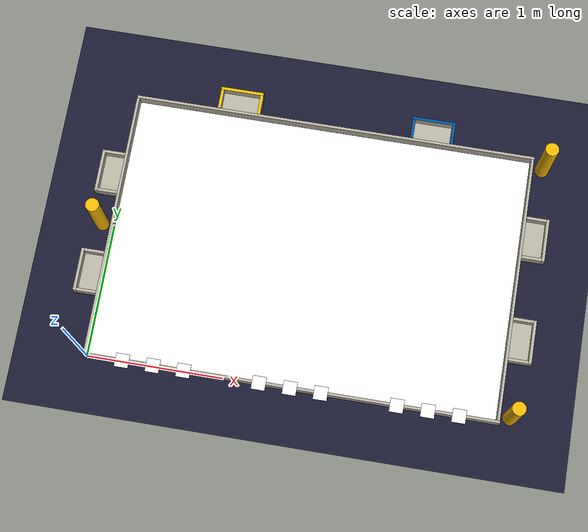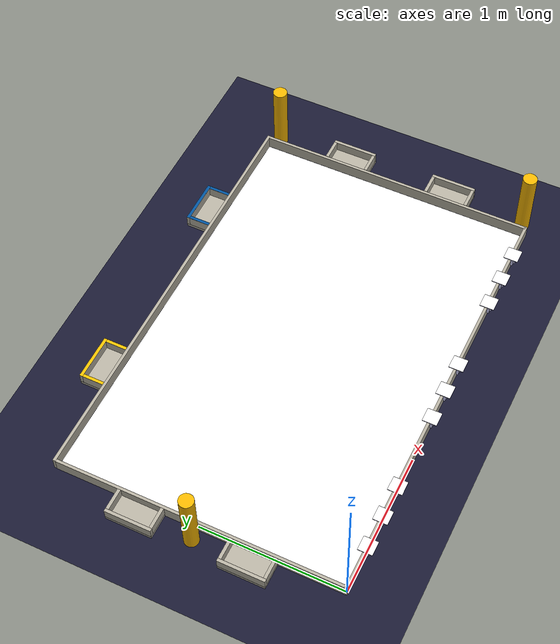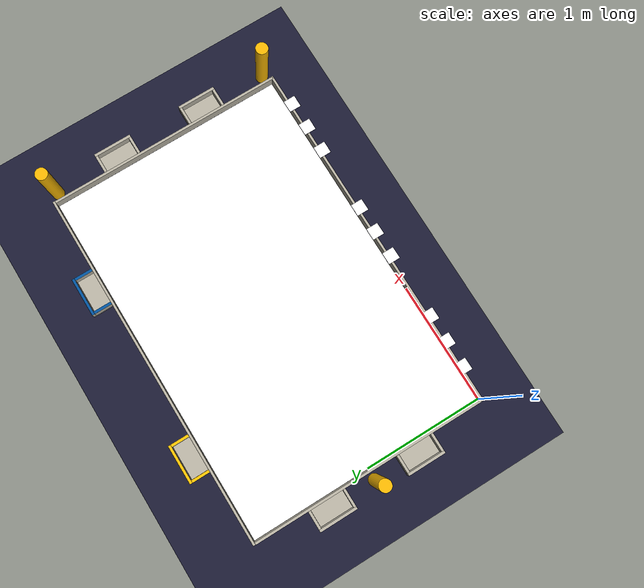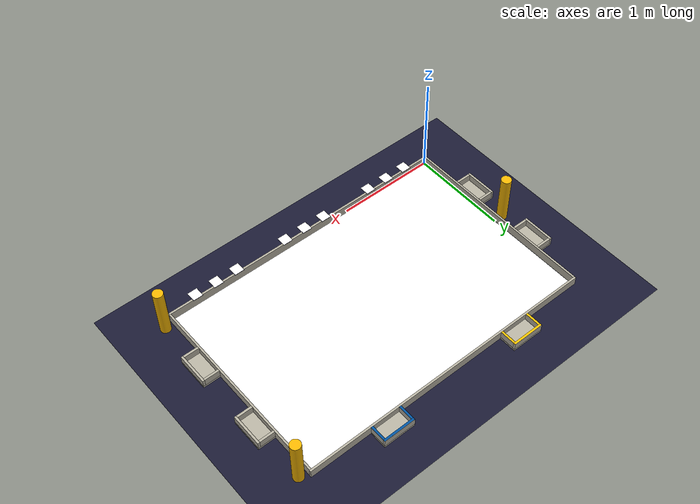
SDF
<sdf version="1.4">
 <world name="eurobot_2024">
  <plugin filename="gz-sim-physics-system" name="gz::sim::systems::Physics"/>
  <plugin filename="gz-sim-user-commands-system" name="gz::sim::systems::UserCommands"/>
  <plugin filename="gz-sim-scene-broadcaster-system" name="gz::sim::systems::SceneBroadcaster"/>
  <physics name="1ms" type="ignored">
   <max_step_size>0.01</max_step_size>
   <real_time_factor>1.0</real_time_factor>
  </physics>
  <plugin filename="gz-sim-sensors-system" name="gz::sim::systems::Sensors">
   <render_engine>ogre2</render_engine>
  </plugin>
  <plugin filename="gz-sim-imu-system" name="gz::sim::systems::Imu"/>
  <plugin filename="gz-sim-contact-system" name="gz::sim::systems::Contact"/>
  <scene><ambient>0.4 0.4 0.4 1</ambient><shadows>false</shadows></scene>
  <light type="directional" name="light1">
   <pose>1.5 1 50 0 0 0</pose>
   <diffuse>0.5 0.5 0.5 1</diffuse>
   <specular>1 1 1 0</specular>
   <direction>1 0 0.5</direction>
  </light>
  <light type="directional" name="light2">
   <pose>1.5 1 50 0 0 0</pose>
   <diffuse>0.5 0.5 0.5 1</diffuse>
   <specular>1 1 1 0</specular>
   <direction>1 0 -0.5</direction>
  </light>
  <model name="ground_plane">
   <static>true</static>
   <link name="ground_link">
    <collision name="collision1"><geometry><plane><normal>0 0 1</normal></plane></geometry></collision>
    <visual name="visual1">
     <geometry><plane><normal>0 0 1</normal><size>100 100</size></plane></geometry>
     <material>
      <ambient>0.1 0.1 0.1 0</ambient>
      <diffuse>0.1 0.1 0.2 0</diffuse>
      <specular>0 0 0 0</specular>
      <emissive>0 0 0 0</emissive>
     </material>
    </visual>
   </link>
  </model>
  <include>
   <name>playground</name>
   <uri>model://eurobot_playground_24</uri>
   <pose>1.5 1.0 -0.001 0 0 0</pose>
  </include>
  <model name="wall1">
   <static>true</static>
   <pose>1.502 0 0.045 0 0 0</pose>
   <link name="body">
    <collision name="collision1"><geometry><box><size>3.04 0.02 0.09</size></box></geometry></collision>
    <visual name="visual1">
     <geometry><box><size>3.04 0.02 0.09</size></box></geometry>
     <material>
      <ambient>0.71 0.69 0.63 1.0</ambient>
      <diffuse>0.71 0.69 0.63 1.0</diffuse>
      <specular>0.1 0.1 0.1 1</specular>
      <emissive>0 0 0 0</emissive>
     </material>
    </visual>
   </link>
  </model>
  <model name="wall2">
   <static>true</static>
   <pose>1.502 2.01 0.045 0 0 0</pose>
   <link name="body">
    <collision name="collision1"><geometry><box><size>3.04 0.02 0.09</size></box></geometry></collision>
    <visual name="visual1">
     <geometry><box><size>3.04 0.02 0.09</size></box></geometry>
     <material>
      <ambient>0.71 0.69 0.63 1.0</ambient>
      <diffuse>0.71 0.69 0.63 1.0</diffuse>
      <specular>0.1 0.1 0.1 1</specular>
      <emissive>0 0 0 0</emissive>
     </material>
    </visual>
   </link>
  </model>
  <model name="wall3">
   <static>true</static>
   <pose>3.01 1.0 0.045 0 0 0</pose>
   <link name="body">
    <collision name="collision1"><geometry><box><size>0.02 2.0 0.09</size></box></geometry></collision>
    <visual name="visual1">
     <geometry><box><size>0.02 2 0.09</size></box></geometry>
     <material>
      <ambient>0.71 0.69 0.63 1.0</ambient>
      <diffuse>0.71 0.69 0.63 1.0</diffuse>
      <specular>0.1 0.1 0.1 1</specular>
      <emissive>0 0 0 0</emissive>
     </material>
    </visual>
   </link>
  </model>
  <model name="wall4">
   <static>true</static>
   <pose>-0.01 1.0 0.045 0 0 0</pose>
   <link name="body">
    <collision name="collision1"><geometry><box><size>0.02 2.0 0.09</size></box></geometry></collision>
    <visual name="visual1">
     <geometry><box><size>0.02 2 0.09</size></box></geometry>
     <material>
      <ambient>0.71 0.69 0.63 1.0</ambient>
      <diffuse>0.71 0.69 0.63 1.0</diffuse>
      <specular>0.1 0.1 0.1 1</specular>
      <emissive>0 0 0 0</emissive>
     </material>
    </visual>
   </link>
  </model>
  <model name="landmark2">
   <pose>-0.094 1.0 0.25 0 0 0</pose>
   <static>true</static>
   <link name="link">
    <collision name="collision">
     <geometry><cylinder><length>0.5</length><radius>0.05</radius></cylinder></geometry>
     <laser_retro>20.0</laser_retro>
    </collision>
    <visual name="visual">
     <geometry><cylinder><length>0.5</length><radius>0.05</radius></cylinder></geometry>
     <material>
      <ambient>0.96 0.71 0.0 1</ambient>
      <diffuse>0.96 0.71 0.0 1</diffuse>
      <specular>0 0 0 0</specular>
      <emissive>0 0 0 0</emissive>
     </material>
    </visual>
   </link>
  </model>
  <model name="landmark4">
   <pose>3.094 0.05 0.25 0 0 0</pose>
   <static>true</static>
   <link name="link">
    <collision name="collision">
     <geometry><cylinder><length>0.5</length><radius>0.05</radius></cylinder></geometry>
     <laser_retro>40.0</laser_retro>
    </collision>
    <visual name="visual">
     <geometry><cylinder><length>0.5</length><radius>0.05</radius></cylinder></geometry>
     <material>
      <ambient>0.96 0.71 0.0 1</ambient>
      <diffuse>0.96 0.71 0.0 1</diffuse>
      <specular>0 0 0 0</specular>
      <emissive>0 0 0 0</emissive>
     </material>
    </visual>
   </link>
  </model>
  <model name="landmark6">
   <pose>3.094 1.95 0.25 0 0 0</pose>
   <static>true</static>
   <link name="link">
    <collision name="collision">
     <geometry><cylinder><length>0.5</length><radius>0.05</radius></cylinder></geometry>
     <laser_retro>60.0</laser_retro>
    </collision>
    <visual name="visual">
     <geometry><cylinder><length>0.5</length><radius>0.05</radius></cylinder></geometry>
     <material>
      <ambient>0.96 0.71 0.0 1</ambient>
      <diffuse>0.96 0.71 0.0 1</diffuse>
      <specular>0 0 0 0</specular>
      <emissive>0 0 0 0</emissive>
     </material>
    </visual>
   </link>
  </model>
  <include>
   <static>true</static>
   <name>shared_planter_1</name>
   <uri>model://eurobot_24/planter_shared</uri>
   <pose>-0.1060 0.6125 0.011 0 0 0</pose>
  </include>
  <include>
   <static>true</static>
   <name>shared_planter_2</name>
   <uri>model://eurobot_24/planter_shared</uri>
   <pose>-0.1060 1.3875 0.011 0 0 0</pose>
  </include>
  <include>
   <static>true</static>
   <name>shared_planter_3</name>
   <uri>model://eurobot_24/planter_shared</uri>
   <pose>3.1060 0.6125 0.011 0 0 3.14159265</pose>
  </include>
  <include>
   <static>true</static>
   <name>shared_planter_4</name>
   <uri>model://eurobot_24/planter_shared</uri>
   <pose>3.1060 1.3875 0.011 0 0 3.14159265</pose>
  </include>
  <include>
   <static>true</static>
   <name>yellow_planter_1</name>
   <uri>model://eurobot_24/planter_yellow</uri>
   <pose>0.7625 2.1060 0.011 0 0 -1.57079632679</pose>
  </include>
  <include>
   <static>true</static>
   <name>blue_planter_1</name>
   <uri>model://eurobot_24/planter_blue</uri>
   <pose>2.2375 2.1060 0.011 0 0 -1.57079632679</pose>
  </include>
  <include>
   <static>false</static>
   <name>solar_panel_1</name>
   <uri>model://eurobot_24/solar_panels</uri>
   <pose>0.275 -0.025 0.09 0 0 0</pose>
  </include>
  <include>
   <static>false</static>
   <name>solar_panel_2</name>
   <uri>model://eurobot_24/solar_panels</uri>
   <pose>0.5 -0.025 0.09 0 0 0</pose>
  </include>
  <include>
   <static>false</static>
   <name>solar_panel_3</name>
   <uri>model://eurobot_24/solar_panels</uri>
   <pose>0.725 -0.025 0.09 0 0 0</pose>
  </include>
  <include>
   <static>false</static>
   <name>solar_panel_4</name>
   <uri>model://eurobot_24/solar_panels</uri>
   <pose>1.275 -0.025 0.09 0 0 0</pose>
  </include>
  <include>
   <static>false</static>
   <name>solar_panel_5</name>
   <uri>model://eurobot_24/solar_panels</uri>
   <pose>1.5 -0.025 0.09 0 0 0</pose>
  </include>
  <include>
   <static>false</static>
   <name>solar_panel_6</name>
   <uri>model://eurobot_24/solar_panels</uri>
   <pose>1.725 -0.025 0.09 0 0 0</pose>
  </include>
  <include>
   <static>false</static>
   <name>solar_panel_7</name>
   <uri>model://eurobot_24/solar_panels</uri>
   <pose>2.275 -0.025 0.09 0 0 0</pose>
  </include>
  <include>
   <static>false</static>
   <name>solar_panel_8</name>
   <uri>model://eurobot_24/solar_panels</uri>
   <pose>2.5 -0.025 0.09 0 0 0</pose>
  </include>
  <include>
   <static>false</static>
   <name>solar_panel_9</name>
   <uri>model://eurobot_24/solar_panels</uri>
   <pose>2.725 -0.025 0.09 0 0 0</pose>
  </include>
 </world>
</sdf>

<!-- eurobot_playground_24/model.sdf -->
<sdf version="1.6">
  <model name="Eurobot Playground Model">
    <static>true</static>
    <link name="plane">
      <collision name="plane_collision">
        <geometry>
          <box>
            <size>3 2 0.0001</size>
          </box>
        </geometry>
      </collision>
      <visual name="plane_visual">
        <geometry>
          <box>
            <size>3 2 0.0001</size>
          </box>
        </geometry>
        <material>
          <ambient>1 1 1 1</ambient>
          <diffuse>1 1 1 1</diffuse>
          <specular>0.1 0.1 0.1 1</specular>
          <pbr>
            <metal>
              <albedo_map>materials/textures/vinyle_table_2024.png</albedo_map>
              <roughness>1.0</roughness>
              <metalness>0.0</metalness>
            </metal>
          </pbr>
        </material>
      </visual>
    </link>

  </model>
</sdf>

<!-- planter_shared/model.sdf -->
<sdf version="1.6">
    <model name="shared_planter">
        <static>false</static>
        <link name="shared_planter_base">
            <collision name="shared_planter_base_collision">
                <geometry>
                <box>
                    <size>0.172 0.325 0.022</size>
                </box>
                </geometry>
            </collision>
            <inertial>
                <inertia>
                <ixx>0.000703</ixx>
                <ixy>0</ixy>
                <ixz>0</ixz>
                <iyy>0.000703</iyy>
                <iyz>0</iyz>
                <izz>0.000703</izz>
                </inertia>
                <mass>0.1</mass>
            </inertial>
            <visual name="shared_planter_base_visual">
                <pose>0 0 0 0 0 0</pose>
                <geometry>
                    <box>
                        <size>0.172 0.325 0.022</size>
                    </box>
                </geometry>
                <material>
                    <ambient>0.71 0.69 0.63 1.0</ambient>
                    <diffuse>0.71 0.69 0.63 1.0</diffuse>
                    <specular>0.1 0.1 0.1 1</specular>
                    <emissive>0 0 0 0</emissive>
                </material>
            </visual>
        </link>
        <link name="shared_planter_wall_back">
            <pose>-0.075 0 0.046 0 0 0</pose>
            <collision name="shared_planter_wall_back_collision">
                <geometry>
                <box>
                    <size>0.022 0.325 0.07</size>
                </box>
                </geometry>
            </collision>
            <inertial>
                <inertia>
                <ixx>0.000703</ixx>
                <ixy>0</ixy>
                <ixz>0</ixz>
                <iyy>0.000703</iyy>
                <iyz>0</iyz>
                <izz>0.000703</izz>
                </inertia>
                <mass>0.1</mass>
            </inertial>
            <visual name="shared_planter_wall_back_visual">
                <geometry>
                    <box>
                        <size>0.022 0.325 0.07</size>
                    </box>
                </geometry>
                <material>
                    <ambient>0.71 0.69 0.63 1.0</ambient>
                    <diffuse>0.71 0.69 0.63 1.0</diffuse>
                    <specular>0.1 0.1 0.1 1</specular>
                    <emissive>0 0 0 0</emissive>
                </material>
            </visual>
        </link>
        <link name="shared_planter_wall_left">
            <pose>0.011 -0.1515 0.046 0 0 0</pose>
            <collision name="shared_planter_wall_left_collision">
                <geometry>
                <box>
                    <size>0.15 0.022 0.07</size>
                </box>
                </geometry>
            </collision>
            <inertial>
                <inertia>
                <ixx>0.000703</ixx>
                <ixy>0</ixy>
                <ixz>0</ixz>
                <iyy>0.000703</iyy>
                <iyz>0</iyz>
                <izz>0.000703</izz>
                </inertia>
                <mass>0.1</mass>
            </inertial>
            <visual name="shared_planter_wall_left_visual">
                <geometry>
                    <box>
                        <size>0.15 0.022 0.07</size>
                    </box>
                </geometry>
                <material>
                    <ambient>0.71 0.69 0.63 1.0</ambient>
                    <diffuse>0.71 0.69 0.63 1.0</diffuse>
                    <specular>0.1 0.1 0.1 1</specular>
                    <emissive>0 0 0 0</emissive>
                </material>
            </visual>
        </link>
        <link name="shared_planter_wall_right">
            <pose>0.011 0.1515 0.046 0 0 0</pose>
            <collision name="shared_planter_wall_right_collision">
                <geometry>
                <box>
                    <size>0.15 0.022 0.07</size>
                </box>
                </geometry>
            </collision>
            <inertial>
                <inertia>
                <ixx>0.000703</ixx>
                <ixy>0</ixy>
                <ixz>0</ixz>
                <iyy>0.000703</iyy>
                <iyz>0</iyz>
                <izz>0.000703</izz>
                </inertia>
                <mass>0.1</mass>
            </inertial>
            <visual name="shared_planter_wall_right_visual">
                <geometry>
                    <box>
                        <size>0.15 0.022 0.07</size>
                    </box>
                </geometry>
                <material>
                    <ambient>0.71 0.69 0.63 1.0</ambient>
                    <diffuse>0.71 0.69 0.63 1.0</diffuse>
                    <specular>0.1 0.1 0.1 1</specular>
                    <emissive>0 0 0 0</emissive>
                </material>
            </visual>
        </link>
        <joint name="back_wall_fixed" type="fixed">
            <parent>shared_planter_base</parent>
            <child>shared_planter_wall_back</child>
        </joint>
        <joint name="left_wall_fixed" type="fixed">
            <parent>shared_planter_base</parent>
            <child>shared_planter_wall_left</child>
        </joint>
        <joint name="right_wall_fixed" type="fixed">
            <parent>shared_planter_base</parent>
            <child>shared_planter_wall_right</child>
        </joint>
    </model>
</sdf>

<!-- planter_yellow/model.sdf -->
<sdf version="1.6">
    <model name="yellow_planter">
        <static>false</static>
        <link name="yellow_planter_base">
            <collision name="yellow_planter_base_collision">
                <geometry>
                <box>
                    <size>0.172 0.325 0.022</size>
                </box>
                </geometry>
            </collision>
            <inertial>
                <inertia>
                <ixx>0.000703</ixx>
                <ixy>0</ixy>
                <ixz>0</ixz>
                <iyy>0.000703</iyy>
                <iyz>0</iyz>
                <izz>0.000703</izz>
                </inertia>
                <mass>0.1</mass>
            </inertial>
            <visual name="yellow_planter_base_visual">
                <pose>0 0 0 0 0 0</pose>
                <geometry>
                    <box>
                        <size>0.172 0.325 0.022</size>
                    </box>
                </geometry>
                <material>
                    <ambient>0.71 0.69 0.63 1.0</ambient>
                    <diffuse>0.71 0.69 0.63 1.0</diffuse>
                    <specular>0.1 0.1 0.1 1</specular>
                    <emissive>0 0 0 0</emissive>
                </material>
            </visual>
        </link>
        <link name="yellow_planter_wall_back">
            <pose>-0.075 0 0.046 0 0 0</pose>
            <collision name="yellow_planter_wall_back_collision">
                <geometry>
                <box>
                    <size>0.022 0.325 0.07</size>
                </box>
                </geometry>
            </collision>
            <inertial>
                <inertia>
                <ixx>0.000703</ixx>
                <ixy>0</ixy>
                <ixz>0</ixz>
                <iyy>0.000703</iyy>
                <iyz>0</iyz>
                <izz>0.000703</izz>
                </inertia>
                <mass>0.1</mass>
            </inertial>
            <visual name="yellow_planter_wall_back_visual">
                <geometry>
                    <box>
                        <size>0.022 0.325 0.07</size>
                    </box>
                </geometry>
                <material>
                    <ambient>0.71 0.69 0.63 1.0</ambient>
                    <diffuse>0.71 0.69 0.63 1.0</diffuse>
                    <specular>0.1 0.1 0.1 1</specular>
                    <emissive>0 0 0 0</emissive>
                </material>
            </visual>
            <visual name="wall_back_color_cap">
                <pose>0 0 0.03505 0 0 0</pose>
                <geometry>
                <box>
                    <size>0.022 0.325 0.0001</size>
                </box>
                </geometry>
                <material>
                    <ambient>0.98 0.75 0.00 1</ambient>
                    <diffuse>0.98 0.75 0.00 1</diffuse>
                    <specular>0.05 0.05 0.05 1</specular>
                </material>
            </visual>

        </link>
        <link name="yellow_planter_wall_left">
            <pose>0.011 -0.1515 0.046 0 0 0</pose>
            <collision name="yellow_planter_wall_left_collision">
                <geometry>
                <box>
                    <size>0.15 0.022 0.07</size>
                </box>
                </geometry>
            </collision>
            <inertial>
                <inertia>
                <ixx>0.000703</ixx>
                <ixy>0</ixy>
                <ixz>0</ixz>
                <iyy>0.000703</iyy>
                <iyz>0</iyz>
                <izz>0.000703</izz>
                </inertia>
                <mass>0.1</mass>
            </inertial>
            <visual name="yellow_planter_wall_left_visual">
                <geometry>
                    <box>
                        <size>0.15 0.022 0.07</size>
                    </box>
                </geometry>
                <material>
                    <ambient>0.71 0.69 0.63 1.0</ambient>
                    <diffuse>0.71 0.69 0.63 1.0</diffuse>
                    <specular>0.1 0.1 0.1 1</specular>
                    <emissive>0 0 0 0</emissive>
                </material>
            </visual>
            <visual name="wall_left_color_cap">
                <pose>0 0 0.03505 0 0 0</pose>
                <geometry>
                <box>
                    <size>0.15 0.022 0.0001</size>
                </box>
                </geometry>
                <material>
                    <ambient>0.98 0.75 0.00 1</ambient>
                    <diffuse>0.98 0.75 0.00 1</diffuse>
                    <specular>0.05 0.05 0.05 1</specular>
                </material>
            </visual>
        </link>
        <link name="yellow_planter_wall_right">
            <pose>0.011 0.1515 0.046 0 0 0</pose>
            <collision name="yellow_planter_wall_right_collision">
                <geometry>
                <box>
                    <size>0.15 0.022 0.07</size>
                </box>
                </geometry>
            </collision>
            <inertial>
                <inertia>
                <ixx>0.000703</ixx>
                <ixy>0</ixy>
                <ixz>0</ixz>
                <iyy>0.000703</iyy>
                <iyz>0</iyz>
                <izz>0.000703</izz>
                </inertia>
                <mass>0.1</mass>
            </inertial>
            <visual name="yellow_planter_wall_right_visual">
                <geometry>
                    <box>
                        <size>0.15 0.022 0.07</size>
                    </box>
                </geometry>
                <material>
                    <ambient>0.71 0.69 0.63 1.0</ambient>
                    <diffuse>0.71 0.69 0.63 1.0</diffuse>
                    <specular>0.1 0.1 0.1 1</specular>
                    <emissive>0 0 0 0</emissive>
                </material>
            </visual>
            <visual name="wall_right_color_cap">
                <pose>0 0 0.03505 0 0 0</pose>
                <geometry>
                <box>
                    <size>0.15 0.022 0.0001</size>
                </box>
                </geometry>
                <material>
                    <ambient>0.98 0.75 0.00 1</ambient>
                    <diffuse>0.98 0.75 0.00 1</diffuse>
                    <specular>0.05 0.05 0.05 1</specular>
                </material>
            </visual>
        </link>
        <joint name="back_wall_fixed" type="fixed">
            <parent>yellow_planter_base</parent>
            <child>yellow_planter_wall_back</child>
        </joint>
        <joint name="left_wall_fixed" type="fixed">
            <parent>yellow_planter_base</parent>
            <child>yellow_planter_wall_left</child>
        </joint>
        <joint name="right_wall_fixed" type="fixed">
            <parent>yellow_planter_base</parent>
            <child>yellow_planter_wall_right</child>
        </joint>
    </model>
</sdf>

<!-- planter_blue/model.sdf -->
<sdf version="1.6">
    <model name="blue_planter">
        <static>false</static>
        <link name="blue_planter_base">
            <collision name="blue_planter_base_collision">
                <geometry>
                <box>
                    <size>0.172 0.325 0.022</size>
                </box>
                </geometry>
            </collision>
            <inertial>
                <inertia>
                <ixx>0.000703</ixx>
                <ixy>0</ixy>
                <ixz>0</ixz>
                <iyy>0.000703</iyy>
                <iyz>0</iyz>
                <izz>0.000703</izz>
                </inertia>
                <mass>0.1</mass>
            </inertial>
            <visual name="blue_planter_base_visual">
                <pose>0 0 0 0 0 0</pose>
                <geometry>
                    <box>
                        <size>0.172 0.325 0.022</size>
                    </box>
                </geometry>
                <material>
                    <ambient>0.71 0.69 0.63 1.0</ambient>
                    <diffuse>0.71 0.69 0.63 1.0</diffuse>
                    <specular>0.1 0.1 0.1 1</specular>
                    <emissive>0 0 0 0</emissive>
                </material>
            </visual>
        </link>
        <link name="blue_planter_wall_back">
            <pose>-0.075 0 0.046 0 0 0</pose>
            <collision name="blue_planter_wall_back_collision">
                <geometry>
                <box>
                    <size>0.022 0.325 0.07</size>
                </box>
                </geometry>
            </collision>
            <inertial>
                <inertia>
                <ixx>0.000703</ixx>
                <ixy>0</ixy>
                <ixz>0</ixz>
                <iyy>0.000703</iyy>
                <iyz>0</iyz>
                <izz>0.000703</izz>
                </inertia>
                <mass>0.1</mass>
            </inertial>
            <visual name="blue_planter_wall_back_visual">
                <geometry>
                    <box>
                        <size>0.022 0.325 0.07</size>
                    </box>
                </geometry>
                <material>
                    <ambient>0.71 0.69 0.63 1.0</ambient>
                    <diffuse>0.71 0.69 0.63 1.0</diffuse>
                    <specular>0.1 0.1 0.1 1</specular>
                    <emissive>0 0 0 0</emissive>
                </material>
            </visual>
            <visual name="wall_back_color_cap">
                <pose>0 0 0.03505 0 0 0</pose>
                <geometry>
                <box>
                    <size>0.022 0.325 0.0001</size>
                </box>
                </geometry>
                <material>
                    <ambient>0.00 0.32 0.61 1</ambient>
                    <diffuse>0.00 0.32 0.61 1</diffuse>
                    <specular>0.05 0.05 0.05 1</specular>
                </material>
            </visual>

        </link>
        <link name="blue_planter_wall_left">
            <pose>0.011 -0.1515 0.046 0 0 0</pose>
            <collision name="blue_planter_wall_left_collision">
                <geometry>
                <box>
                    <size>0.15 0.022 0.07</size>
                </box>
                </geometry>
            </collision>
            <inertial>
                <inertia>
                <ixx>0.000703</ixx>
                <ixy>0</ixy>
                <ixz>0</ixz>
                <iyy>0.000703</iyy>
                <iyz>0</iyz>
                <izz>0.000703</izz>
                </inertia>
                <mass>0.1</mass>
            </inertial>
            <visual name="blue_planter_wall_left_visual">
                <geometry>
                    <box>
                        <size>0.15 0.022 0.07</size>
                    </box>
                </geometry>
                <material>
                    <ambient>0.71 0.69 0.63 1.0</ambient>
                    <diffuse>0.71 0.69 0.63 1.0</diffuse>
                    <specular>0.1 0.1 0.1 1</specular>
                    <emissive>0 0 0 0</emissive>
                </material>
            </visual>
            <visual name="wall_left_color_cap">
                <pose>0 0 0.03505 0 0 0</pose>
                <geometry>
                <box>
                    <size>0.15 0.022 0.0001</size>
                </box>
                </geometry>
                <material>
                    <ambient>0.00 0.32 0.61 1</ambient>
                    <diffuse>0.00 0.32 0.61 1</diffuse>
                    <specular>0.05 0.05 0.05 1</specular>
                </material>
            </visual>
        </link>
        <link name="blue_planter_wall_right">
            <pose>0.011 0.1515 0.046 0 0 0</pose>
            <collision name="blue_planter_wall_right_collision">
                <geometry>
                <box>
                    <size>0.15 0.022 0.07</size>
                </box>
                </geometry>
            </collision>
            <inertial>
                <inertia>
                <ixx>0.000703</ixx>
                <ixy>0</ixy>
                <ixz>0</ixz>
                <iyy>0.000703</iyy>
                <iyz>0</iyz>
                <izz>0.000703</izz>
                </inertia>
                <mass>0.1</mass>
            </inertial>
            <visual name="blue_planter_wall_right_visual">
                <geometry>
                    <box>
                        <size>0.15 0.022 0.07</size>
                    </box>
                </geometry>
                <material>
                    <ambient>0.71 0.69 0.63 1.0</ambient>
                    <diffuse>0.71 0.69 0.63 1.0</diffuse>
                    <specular>0.1 0.1 0.1 1</specular>
                    <emissive>0 0 0 0</emissive>
                </material>
            </visual>
            <visual name="wall_right_color_cap">
                <pose>0 0 0.03505 0 0 0</pose>
                <geometry>
                <box>
                    <size>0.15 0.022 0.0001</size>
                </box>
                </geometry>
                <material>
                    <ambient>0.00 0.32 0.61 1</ambient>
                    <diffuse>0.00 0.32 0.61 1</diffuse>
                    <specular>0.05 0.05 0.05 1</specular>
                </material>
            </visual>
        </link>
        <joint name="back_wall_fixed" type="fixed">
            <parent>blue_planter_base</parent>
            <child>blue_planter_wall_back</child>
        </joint>
        <joint name="left_wall_fixed" type="fixed">
            <parent>blue_planter_base</parent>
            <child>blue_planter_wall_left</child>
        </joint>
        <joint name="right_wall_fixed" type="fixed">
            <parent>blue_planter_base</parent>
            <child>blue_planter_wall_right</child>
        </joint>
    </model>
</sdf>

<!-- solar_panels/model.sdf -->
<sdf version="1.6">
    <model name="solar_panel">
        <static>false</static>
        <link name="solar_panel_mount">
            <collision name="solar_panel_mount_collision">
                <pose>0 0 -0.025 0 0 0</pose>
                <geometry>
                    <box>
                        <size>0.06 0.02 0.05</size>
                    </box>
                </geometry>
            </collision>
            <inertial>
                <inertia>
                    <ixx>0.01</ixx>
                    <ixy>0</ixy>
                    <ixz>0</ixz>
                    <iyy>0.01</iyy>
                    <iyz>0</iyz>
                    <izz>0.01</izz>
                </inertia>
                <mass>0.1</mass>
            </inertial>
            <visual name="solar_panel_mount_visual">
                <pose>0 0 -0.025 0 0 0</pose>
                <geometry>
                    <mesh>
                        <uri>model://eurobot_24/solar_panels/meshes/Support_Panneau_Solaire.dae</uri>
                        <scale>1 1 1</scale>
                    </mesh>
                </geometry>
            </visual>
        </link>
        <link name="solar_panel">
            <pose>0 0 0.029 0 0 0</pose>
            <collision name="solar_panel_collision">
                <geometry>
                    <box>
                        <size>0.1 0.1 0.034</size>
                    </box>
                </geometry>
            </collision>
            <inertial>
                <inertia>
                    <ixx>0.01</ixx>
                    <ixy>0</ixy>
                    <ixz>0</ixz>
                    <iyy>0.01</iyy>
                    <iyz>0</iyz>
                    <izz>0.01</izz>
                </inertia>
                <mass>0.1</mass>
            </inertial>
            <visual name="solar_panel_visual">
                <geometry>
                    <mesh>
                        <uri>model://eurobot_24/solar_panels/meshes/Panneau_Solaire.dae</uri>
                        <scale>1 1 1</scale>
                    </mesh>
                </geometry>
            </visual>
            <visual name="solar_panel_texture">
                <pose>0 0.015 0.005 0 0 -1.57079632679</pose>
                <geometry>
                    <box>
                        <size>0.1 0.1 0.0001</size>
                    </box>
                </geometry>
                <material>
                    <ambient>1 1 1 1</ambient>
                    <diffuse>1 1 1 1</diffuse>
                    <specular>0.1 0.1 0.1 1</specular>
                    <pbr>
                        <metal>
                            <albedo_map>materials/textures/vinyle_solar_panel.png</albedo_map>
                            <roughness>1.0</roughness>
                            <metalness>0.0</metalness>
                        </metal>
                    </pbr>
                </material>
            </visual>
        </link>
        <joint name="mount_to_world" type="fixed">
            <parent>world</parent>
            <child>solar_panel_mount</child>
            <pose>0 0 0 0 0 0</pose>
        </joint>
        <joint name="solar_panel_yaw" type="revolute">
            <parent>solar_panel_mount</parent>
            <child>solar_panel</child>
            <pose>0 0 0 0 0 0</pose>
            <axis>
                <xyz>0 0 1</xyz>
                <limit>
                    <lower>-3.14159</lower>
                    <upper> 3.14159</upper>
                </limit>
                <dynamics>
                    <damping>0.02</damping>
                </dynamics>
            </axis>
        </joint>
    </model>
</sdf>
